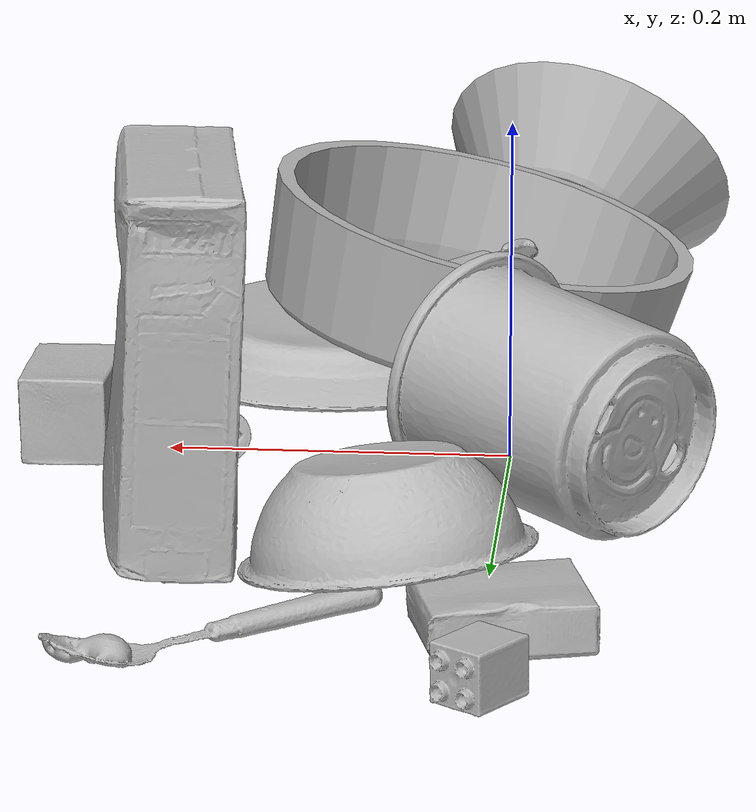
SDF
<sdf version="1.4">
  <world name="default">
    <light name="light1" type="point">
      <pose>0 0 1 0 0 0</pose>
      <diffuse>3 3 3 1</diffuse>
      <specular>3 3 3 1</specular>
    </light>
    <light name="light2" type="point">
      <pose>0 0.5 2 0 0 0</pose>
      <diffuse>1 1 1 1</diffuse>
      <specular>1 1 1 1</specular>
    </light>
    <light name="light3" type="point">
      <pose>0 0.5 2 0 0 0</pose>
      <diffuse>3 3 3 1</diffuse>
      <specular>3 3 3 1</specular>
    </light>
    <scene>
      <ambient>0.7 0.7 0.7</ambient>
    </scene>
    <model name="plate1">
      <link name="link_plate1">
        <collision name="default">
          <geometry>
            <mesh>
              <uri>model://plate/collision_meshes/collision.obj</uri>
              <scale>1.0 1.0 1.0</scale>
            </mesh>
          </geometry>
          <surface>
            <friction>
              <ode>
                <mu>0.5</mu>
                <mu2>0.5</mu2>
              </ode>
            </friction>
          <contact>
        <ode>
            <max_vel>0</max_vel>
            <min_depth>0.0001</min_depth>
            <kp>1e8</kp>
        </ode>
    </contact></surface>
        </collision>
        <visual name="default">
          <geometry>
            <mesh>
              <uri>model://plate/visual_meshes/visual.dae</uri>
              <scale>1.0 1.0 1.0</scale>
            </mesh>
          </geometry>
        </visual>
        <inertial>
          <mass>0.20059238374233246</mass>
          <pose>-0.0006044621695764363 0.00027825910365208983 -0.001056200242601335 0.002218800652723057 -0.0032254723094637602 0.45260588699646775</pose>
          <inertia>
            <ixx>0.00093837525</ixx>
            <iyy>0.0009294</iyy>
            <izz>0.0018353215</izz>
            <ixy>0</ixy>
            <ixz>0</ixz>
            <iyz>0</iyz>
          </inertia>
        </inertial>
      </link>
      <pose>0.12255553156137466 -0.2004319280385971 0.014004357159137726 3.1244263317936047 -0.007485084056484381 0.9078276671269104</pose>
    </model>
    <model name="plate2">
      <link name="link_plate2">
        <collision name="default">
          <geometry>
            <mesh>
              <uri>model://pan_tefal/collision_meshes/collision.obj</uri>
              <scale>1.0 1.0 1.0</scale>
            </mesh>
          </geometry>
          <surface>
            <friction>
              <ode>
                <mu>0.5</mu>
                <mu2>0.5</mu2>
              </ode>
            </friction>
          <contact>
        <ode>
            <max_vel>0</max_vel>
            <min_depth>0.0001</min_depth>
            <kp>1e8</kp>
        </ode>
    </contact></surface>
        </collision>
        <visual name="default">
          <geometry>
            <mesh>
              <uri>model://pan_tefal/visual_meshes/visual.dae</uri>
              <scale>1.0 1.0 1.0</scale>
            </mesh>
          </geometry>
        </visual>
        <inertial>
          <mass>0.5801199674606323</mass>
          <pose>-0.00018002555589191616 3.279062366345897e-05 -0.008514936082065105 0.0008190222895173471 -0.0003301392673675887 -0.3318501085377774</pose>
          <inertia>
            <ixx>0.00400454</ixx>
            <iyy>0.004030358</iyy>
            <izz>0.0073715877</izz>
            <ixy>0</ixy>
            <ixz>0</ixz>
            <iyz>0</iyz>
          </inertia>
        </inertial>
      </link>
      <pose>0.03334260731935501 -0.1740894317626953 0.06321637332439423 -0.15227650505443033 0.17328414230735667 2.3937627501120717</pose>
    </model>
    <model name="bowl1">
      <link name="link_bowl1">
        <collision name="default">
          <geometry>
            <mesh>
              <uri>model://bowl/collision_meshes/collision.obj</uri>
              <scale>1.0 1.0 1.0</scale>
            </mesh>
          </geometry>
          <surface>
            <friction>
              <ode>
                <mu>0.5</mu>
                <mu2>0.5</mu2>
              </ode>
            </friction>
          <contact>
        <ode>
            <max_vel>0</max_vel>
            <min_depth>0.0001</min_depth>
            <kp>1e8</kp>
        </ode>
    </contact></surface>
        </collision>
        <visual name="default">
          <geometry>
            <mesh>
              <uri>model://bowl/visual_meshes/visual.dae</uri>
              <scale>1.0 1.0 1.0</scale>
            </mesh>
          </geometry>
        </visual>
        <inertial>
          <mass>0.055578216910362244</mass>
          <pose>0.00020445502013899386 -0.0010302060982212424 -0.000804265437182039 -0.015764048263850368 0.014546844804774466 0.7140432473852318</pose>
          <inertia>
            <ixx>0.00012766755</ixx>
            <iyy>0.000124815</iyy>
            <izz>0.00021478078</izz>
            <ixy>0</ixy>
            <ixz>0</ixz>
            <iyz>0</iyz>
          </inertia>
        </inertial>
      </link>
      <pose>0.05616605654358864 0.21297743916511536 0.041389111429452896 3.05705659361353 -0.1631337648536967 2.845469458771593</pose>
    </model>
    <model name="bowl2">
      <link name="link_bowl2">
        <collision name="default">
          <geometry>
            <mesh>
              <uri>model://bowl_a/collision_meshes/collision.obj</uri>
              <scale>1.0 1.0 1.0</scale>
            </mesh>
          </geometry>
          <surface>
            <friction>
              <ode>
                <mu>0.5</mu>
                <mu2>0.5</mu2>
              </ode>
            </friction>
          <contact>
        <ode>
            <max_vel>0</max_vel>
            <min_depth>0.0001</min_depth>
            <kp>1e8</kp>
        </ode>
    </contact></surface>
        </collision>
        <visual name="default">
          <geometry>
            <mesh>
              <uri>model://bowl_a/visual_meshes/visual.dae</uri>
              <scale>1.0 1.0 1.0</scale>
            </mesh>
          </geometry>
        </visual>
        <inertial>
          <mass>0.31475314497947693</mass>
          <pose>0.00027867438620887697 4.730821092380211e-05 -0.0013765294570475817 -0.0009805369688078041 -0.0010938258688624044 -0.19123886294168949</pose>
          <inertia>
            <ixx>0.00089611666</ixx>
            <iyy>0.00090161816</iyy>
            <izz>0.0015937777</izz>
            <ixy>0</ixy>
            <ixz>0</ixz>
            <iyz>0</iyz>
          </inertia>
        </inertial>
      </link>
      <pose>-0.02336258441209793 -0.35692012310028076 0.06408187747001648 -0.8611203423421221 0.5018464018814174 -3.0953355357863273</pose>
    </model>
    <model name="silverware1">
      <link name="link_silverware1">
        <collision name="default">
          <geometry>
            <mesh>
              <uri>model://spoon/collision_meshes/collision.obj</uri>
              <scale>1.0 1.0 1.0</scale>
            </mesh>
          </geometry>
          <surface>
            <friction>
              <ode>
                <mu>0.5</mu>
                <mu2>0.5</mu2>
              </ode>
            </friction>
          <contact>
        <ode>
            <max_vel>0</max_vel>
            <min_depth>0.0001</min_depth>
            <kp>1e8</kp>
        </ode>
    </contact></surface>
        </collision>
        <visual name="default">
          <geometry>
            <mesh>
              <uri>model://spoon/visual_meshes/visual.dae</uri>
              <scale>1.0 1.0 1.0</scale>
            </mesh>
          </geometry>
        </visual>
        <inertial>
          <mass>0.019504988566040993</mass>
          <pose>-0.005526313092559576 -0.0016034174477681518 -0.0007271654321812093 0.03521671064592188 -0.039065845080026425 0.006150613244710899</pose>
          <inertia>
            <ixx>1.0848988e-06</ixx>
            <iyy>7.421582e-05</iyy>
            <izz>7.4750846e-05</izz>
            <ixy>0</ixy>
            <ixz>0</ixz>
            <iyz>0</iyz>
          </inertia>
        </inertial>
      </link>
      <pose>0.133564293384552 0.3094281852245331 0.008385262452065945 0.006731862197313983 0.026892963919776282 0.6195123141463</pose>
    </model>
    <model name="box1">
      <link name="link_box1">
        <collision name="default">
          <geometry>
            <mesh>
              <uri>model://cracker_box/collision_meshes/collision.obj</uri>
              <scale>1.0 1.0 1.0</scale>
            </mesh>
          </geometry>
          <surface>
            <friction>
              <ode>
                <mu>0.5</mu>
                <mu2>0.5</mu2>
              </ode>
            </friction>
          <contact>
        <ode>
            <max_vel>0</max_vel>
            <min_depth>0.0001</min_depth>
            <kp>1e8</kp>
        </ode>
    </contact></surface>
        </collision>
        <visual name="default">
          <geometry>
            <mesh>
              <uri>model://cracker_box/visual_meshes/visual.dae</uri>
              <scale>1.0 1.0 1.0</scale>
            </mesh>
          </geometry>
        </visual>
        <inertial>
          <mass>2.5078790187835693</mass>
          <pose>0.0009464150061830878 0.00025434247800149024 -0.0017029535956680775 -0.00031620768203149627 -0.01110648960041945 0.002546794303792924</pose>
          <inertia>
            <ixx>0.0063789245</ixx>
            <iyy>0.010532858</iyy>
            <izz>0.015031353</izz>
            <ixy>0</ixy>
            <ixz>0</ixz>
            <iyz>0</iyz>
          </inertia>
        </inertial>
      </link>
      <pose>0.17576651275157928 0.1521061807870865 0.10730646550655365 -0.04244005601956286 1.5294906329857965 0.13144588836738788</pose>
    </model>
    <model name="box2">
      <link name="link_box2">
        <collision name="default">
          <geometry>
            <mesh>
              <uri>model://gelatin_box/collision_meshes/collision.obj</uri>
              <scale>1.0 1.0 1.0</scale>
            </mesh>
          </geometry>
          <surface>
            <friction>
              <ode>
                <mu>0.5</mu>
                <mu2>0.5</mu2>
              </ode>
            </friction>
          <contact>
        <ode>
            <max_vel>0</max_vel>
            <min_depth>0.0001</min_depth>
            <kp>1e8</kp>
        </ode>
    </contact></surface>
        </collision>
        <visual name="default">
          <geometry>
            <mesh>
              <uri>model://gelatin_box/visual_meshes/visual.dae</uri>
              <scale>1.0 1.0 1.0</scale>
            </mesh>
          </geometry>
        </visual>
        <inertial>
          <mass>0.1847851723432541</mass>
          <pose>0.0004319618456065655 0.00011156872642459348 -0.0003640321083366871 -0.001050372098056681 -0.004755818221834168 0.016440563197305347</pose>
          <inertia>
            <ixx>0.00013044327</ixx>
            <iyy>9.317494e-05</iyy>
            <izz>0.0001985637</izz>
            <ixy>0</ixy>
            <ixz>0</ixz>
            <iyz>0</iyz>
          </inertia>
        </inertial>
      </link>
      <pose>-0.011554759927093983 0.2890333831310272 0.015168312937021255 0.005597334823739182 -0.007304751546292956 1.8128054182863533</pose>
    </model>
    <model name="cup1">
      <link name="link_cup1">
        <collision name="default">
          <geometry>
            <mesh>
              <uri>model://d_cups/collision_meshes/collision.obj</uri>
              <scale>2.0 2.0 2.0</scale>
            </mesh>
          </geometry>
          <surface>
            <friction>
              <ode>
                <mu>0.5</mu>
                <mu2>0.5</mu2>
              </ode>
            </friction>
          <contact>
        <ode>
            <max_vel>0</max_vel>
            <min_depth>0.0001</min_depth>
            <kp>1e8</kp>
        </ode>
    </contact></surface>
        </collision>
        <visual name="default">
          <geometry>
            <mesh>
              <uri>model://d_cups/visual_meshes/visual.dae</uri>
              <scale>2.0 2.0 2.0</scale>
            </mesh>
          </geometry>
        </visual>
        <inertial>
          <mass>0.47328615188598633</mass>
          <pose>0.0016136143822222948 0.0038234798703342676 -0.004533303435891867 0.24012870248045765 -0.247092443015796 0.5942312682521343</pose>
          <inertia>
            <ixx>0.0015850074</ixx>
            <iyy>0.0015804201</iyy>
            <izz>0.0014347013</izz>
            <ixy>0</ixy>
            <ixz>0</ixz>
            <iyz>0</iyz>
          </inertia>
        </inertial>
      </link>
      <pose>-0.03382287546992302 0.10316251218318939 0.06484794616699219 -1.478533944775628 -0.010283411659802765 -2.2936598134553936</pose>
    </model>
    <model name="silverware2">
      <link name="link_silverware2">
        <collision name="default">
          <geometry>
            <mesh>
              <uri>model://knife/collision_meshes/collision.obj</uri>
              <scale>1.0 1.0 1.0</scale>
            </mesh>
          </geometry>
          <surface>
            <friction>
              <ode>
                <mu>0.5</mu>
                <mu2>0.5</mu2>
              </ode>
            </friction>
          <contact>
        <ode>
            <max_vel>0</max_vel>
            <min_depth>0.0001</min_depth>
            <kp>1e8</kp>
        </ode>
    </contact></surface>
        </collision>
        <visual name="default">
          <geometry>
            <mesh>
              <uri>model://knife/visual_meshes/visual.dae</uri>
              <scale>1.0 1.0 1.0</scale>
            </mesh>
          </geometry>
        </visual>
        <inertial>
          <mass>0.03430156037211418</mass>
          <pose>-0.02378525398671627 0.0015275129117071629 5.062017953605391e-05 0.07305950900181668 0.01724842494985857 -0.007409825116106198</pose>
          <inertia>
            <ixx>9.736174e-07</ixx>
            <iyy>0.00013178105</iyy>
            <izz>0.00013209462</izz>
            <ixy>0</ixy>
            <ixz>0</ixz>
            <iyz>0</iyz>
          </inertia>
        </inertial>
      </link>
      <pose>0.031490545719861984 -0.07845771312713623 0.08861259371042252 2.7977107170680715 -0.3959985039824181 2.065655149028154</pose>
    </model>
    <model name="silverware3">
      <link name="link_silverware3">
        <collision name="default">
          <geometry>
            <mesh>
              <uri>model://fork/collision_meshes/collision.obj</uri>
              <scale>1.0 1.0 1.0</scale>
            </mesh>
          </geometry>
          <surface>
            <friction>
              <ode>
                <mu>0.5</mu>
                <mu2>0.5</mu2>
              </ode>
            </friction>
          <contact>
        <ode>
            <max_vel>0</max_vel>
            <min_depth>0.0001</min_depth>
            <kp>1e8</kp>
        </ode>
    </contact></surface>
        </collision>
        <visual name="default">
          <geometry>
            <mesh>
              <uri>model://fork/visual_meshes/visual.dae</uri>
              <scale>1.0 1.0 1.0</scale>
            </mesh>
          </geometry>
        </visual>
        <inertial>
          <mass>0.014111565425992012</mass>
          <pose>-0.02957005426287651 0.0004658825055230409 0.00032188615296036005 -0.01355195006397287 -0.010977841645129428 0.014453906946454091</pose>
          <inertia>
            <ixx>4.9469025e-07</ixx>
            <iyy>3.684124e-05</iyy>
            <izz>3.7062495e-05</izz>
            <ixy>0</ixy>
            <ixz>0</ixz>
            <iyz>0</iyz>
          </inertia>
        </inertial>
      </link>
      <pose>0.0744200348854065 -0.19420231878757477 0.04735158011317253 -0.35524138024748725 -0.08111990071479146 1.0645284150663095</pose>
    </model>
    <model name="toy1">
      <link name="link_toy1">
        <collision name="default">
          <geometry>
            <mesh>
              <uri>model://b_lego_duplo/collision_meshes/collision.obj</uri>
              <scale>1.0 1.0 1.0</scale>
            </mesh>
          </geometry>
          <surface>
            <friction>
              <ode>
                <mu>0.5</mu>
                <mu2>0.5</mu2>
              </ode>
            </friction>
          <contact>
        <ode>
            <max_vel>0</max_vel>
            <min_depth>0.0001</min_depth>
            <kp>1e8</kp>
        </ode>
    </contact></surface>
        </collision>
        <visual name="default">
          <geometry>
            <mesh>
              <uri>model://b_lego_duplo/visual_meshes/visual.dae</uri>
              <scale>1.0 1.0 1.0</scale>
            </mesh>
          </geometry>
        </visual>
        <inertial>
          <mass>0.029451588168740273</mass>
          <pose>-0.00011053002526750788 -9.152366146736313e-06 0.0019294293597340584 -0.03749525813168218 -0.026353287435260622 0.45191626186006195</pose>
          <inertia>
            <ixx>6.0274892e-06</ixx>
            <iyy>6.0680068e-06</iyy>
            <izz>5.3702943e-06</izz>
            <ixy>0</ixy>
            <ixz>0</ixz>
            <iyz>0</iyz>
          </inertia>
        </inertial>
      </link>
      <pose>-0.004125434439629316 0.3746151924133301 0.016121292486786842 1.5723733572331215 -0.012010996590246098 2.514408901562663</pose>
    </model>
    <model name="toy2">
      <link name="link_toy2">
        <collision name="default">
          <geometry>
            <mesh>
              <uri>model://foam_brick/collision_meshes/collision.obj</uri>
              <scale>1.0 1.0 1.0</scale>
            </mesh>
          </geometry>
          <surface>
            <friction>
              <ode>
                <mu>0.5</mu>
                <mu2>0.5</mu2>
              </ode>
            </friction>
          <contact>
        <ode>
            <max_vel>0</max_vel>
            <min_depth>0.0001</min_depth>
            <kp>1e8</kp>
        </ode>
    </contact></surface>
        </collision>
        <visual name="default">
          <geometry>
            <mesh>
              <uri>model://foam_brick/visual_meshes/visual.dae</uri>
              <scale>1.0 1.0 1.0</scale>
            </mesh>
          </geometry>
        </visual>
        <inertial>
          <mass>0.2443593144416809</mass>
          <pose>-0.0002522472059354186 0.00034584393142722547 -0.0002532101352699101 -0.2940184651969868 0.017274440266988163 -0.0007449890747987857</pose>
          <inertia>
            <ixx>0.00010674072</ixx>
            <iyy>0.00017041703</iyy>
            <izz>0.00017258283</izz>
            <ixy>0</ixy>
            <ixz>0</ixz>
            <iyz>0</iyz>
          </inertia>
        </inertial>
      </link>
      <pose>0.2574906647205353 0.0008422996615990996 0.025910688564181328 1.5828205055713638 -0.00037566389667271696 1.5750193952829168</pose>
    </model>
    <model name="toy3">
      <link name="link_toy3">
        <collision name="default">
          <geometry>
            <mesh>
              <uri>model://d_lego_duplo/collision_meshes/collision.obj</uri>
              <scale>1.0 1.0 1.0</scale>
            </mesh>
          </geometry>
          <surface>
            <friction>
              <ode>
                <mu>0.5</mu>
                <mu2>0.5</mu2>
              </ode>
            </friction>
          <contact>
        <ode>
            <max_vel>0</max_vel>
            <min_depth>0.0001</min_depth>
            <kp>1e8</kp>
        </ode>
    </contact></surface>
        </collision>
        <visual name="default">
          <geometry>
            <mesh>
              <uri>model://d_lego_duplo/visual_meshes/visual.dae</uri>
              <scale>1.0 1.0 1.0</scale>
            </mesh>
          </geometry>
        </visual>
        <inertial>
          <mass>0.033699363470077515</mass>
          <pose>0.002830563113093376 0.0001636613014852628 0.0008589802891947329 0.08010879334546937 -0.38355231252286476 0.0010296922462193392</pose>
          <inertia>
            <ixx>6.5236977e-06</ixx>
            <iyy>9.258897e-06</iyy>
            <izz>8.928908e-06</izz>
            <ixy>0</ixy>
            <ixz>0</ixz>
            <iyz>0</iyz>
          </inertia>
        </inertial>
      </link>
      <pose>0.0014152263756841421 -0.015524698421359062 0.01638062298297882 -1.5707964973686386 -0.008044327321039829 0.8224993152755385</pose>
    </model>
    <model name="toy4">
      <link name="link_toy4">
        <collision name="default">
          <geometry>
            <mesh>
              <uri>model://d_toy_airplane/collision_meshes/collision.obj</uri>
              <scale>1.0 1.0 1.0</scale>
            </mesh>
          </geometry>
          <surface>
            <friction>
              <ode>
                <mu>0.5</mu>
                <mu2>0.5</mu2>
              </ode>
            </friction>
          <contact>
        <ode>
            <max_vel>0</max_vel>
            <min_depth>0.0001</min_depth>
            <kp>1e8</kp>
        </ode>
    </contact></surface>
        </collision>
        <visual name="default">
          <geometry>
            <mesh>
              <uri>model://d_toy_airplane/visual_meshes/visual.dae</uri>
              <scale>1.0 1.0 1.0</scale>
            </mesh>
          </geometry>
        </visual>
        <inertial>
          <mass>0.016584575176239014</mass>
          <pose>9.410303027834743e-05 -5.809338472317904e-05 -0.01172809861600399 0.0002669776058846709 0.004678969238403601 0.5194647440200774</pose>
          <inertia>
            <ixx>4.9717323e-06</ixx>
            <iyy>4.975482e-06</iyy>
            <izz>1.5009987e-06</izz>
            <ixy>0</ixy>
            <ixz>0</ixz>
            <iyz>0</iyz>
          </inertia>
        </inertial>
      </link>
      <pose>0.17442750930786133 0.0003019273281097412 0.011460752226412296 1.9236595162669494 -0.95263193377018 0.06324484110433973</pose>
    </model>
    <model name="toy5">
      <link name="link_toy5">
        <collision name="default">
          <geometry>
            <mesh>
              <uri>model://e_toy_airplane/collision_meshes/collision.obj</uri>
              <scale>1.0 1.0 1.0</scale>
            </mesh>
          </geometry>
          <surface>
            <friction>
              <ode>
                <mu>0.5</mu>
                <mu2>0.5</mu2>
              </ode>
            </friction>
          <contact>
        <ode>
            <max_vel>0</max_vel>
            <min_depth>0.0001</min_depth>
            <kp>1e8</kp>
        </ode>
    </contact></surface>
        </collision>
        <visual name="default">
          <geometry>
            <mesh>
              <uri>model://e_toy_airplane/visual_meshes/visual.dae</uri>
              <scale>1.0 1.0 1.0</scale>
            </mesh>
          </geometry>
        </visual>
        <inertial>
          <mass>0.01714155077934265</mass>
          <pose>0.00011740483023459092 -2.2482887288788334e-05 -0.011187203228473663 0.005518467343725363 0.009228313895921611 0.15041273076279138</pose>
          <inertia>
            <ixx>5.2317982e-06</ixx>
            <iyy>5.178279e-06</iyy>
            <izz>1.5723607e-06</izz>
            <ixy>0</ixy>
            <ixz>0</ixz>
            <iyz>0</iyz>
          </inertia>
        </inertial>
      </link>
      <pose>-0.06235926225781441 -0.4443940818309784 0.010808566585183144 -2.1451300161219917 1.1027839049257113 0.4220927768241546</pose>
    </model>
  <physics type="ode">
      <max_contacts>50</max_contacts>
      <ode>
        <solver>
          <type>quick</type>
          <iters>75</iters>
        </solver>
        <constraints>
          <contact_max_correcting_vel>0</contact_max_correcting_vel>
          <contact_surface_layer>0</contact_surface_layer>
        </constraints>
      </ode>
    </physics></world>
</sdf>
